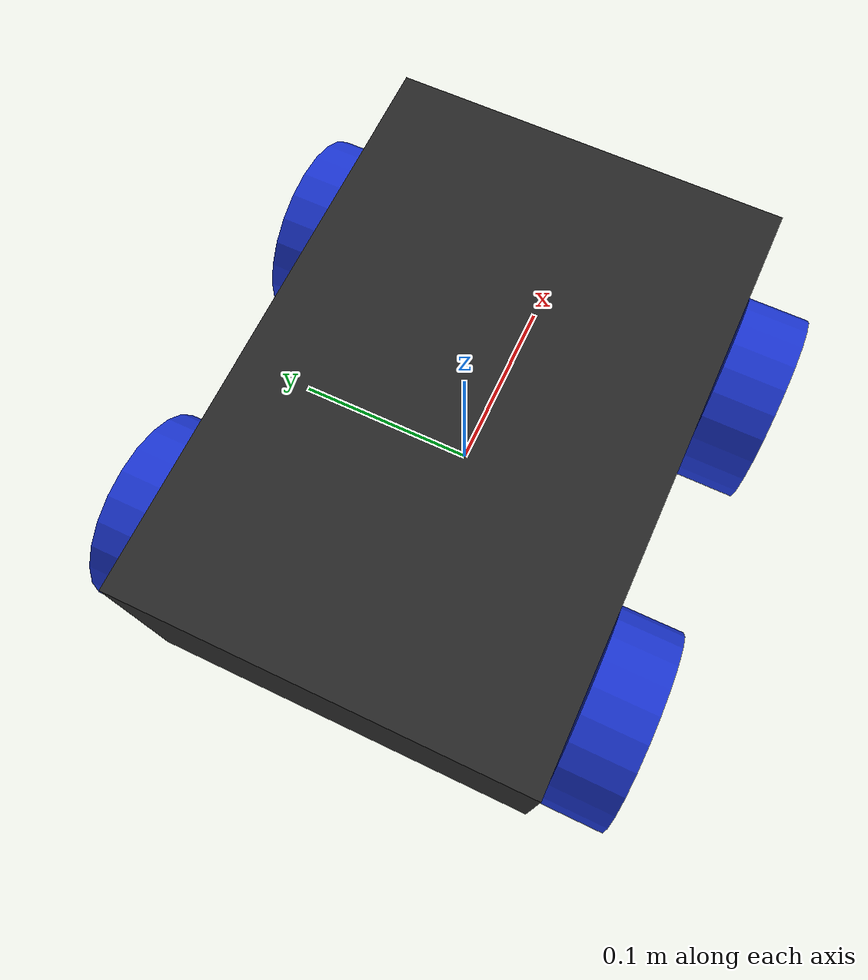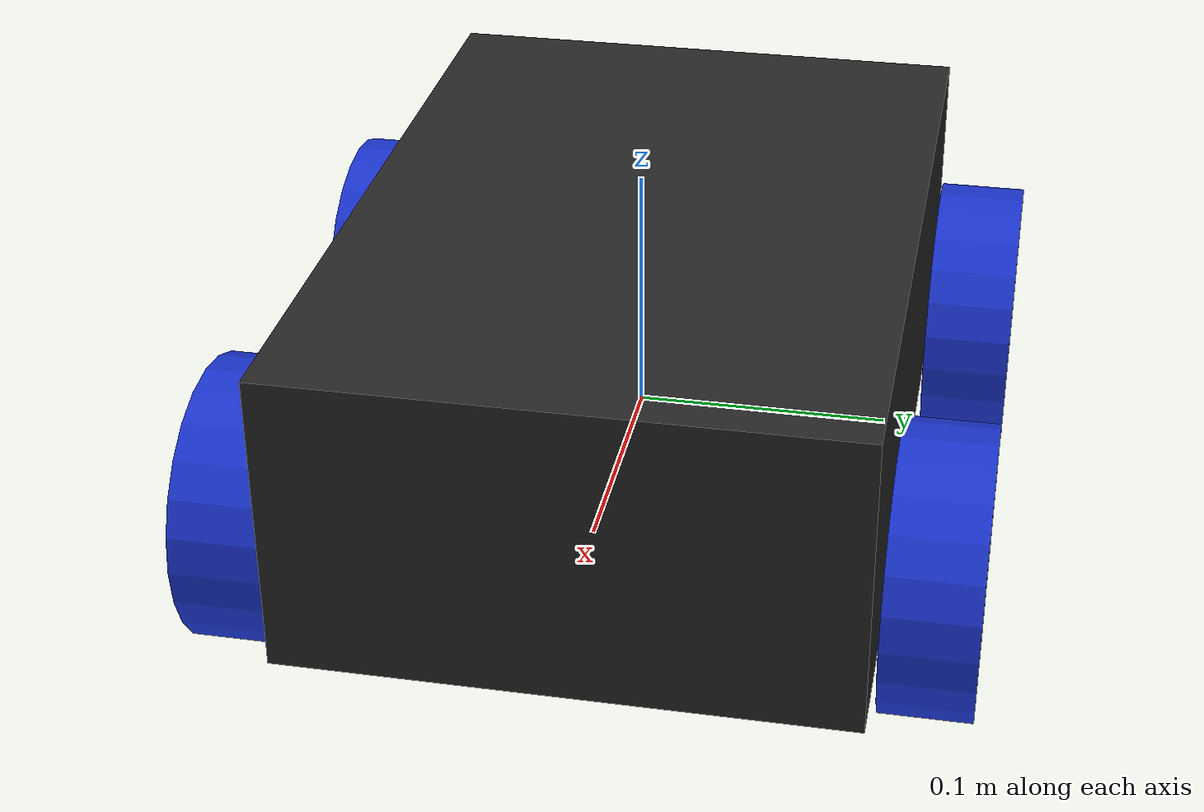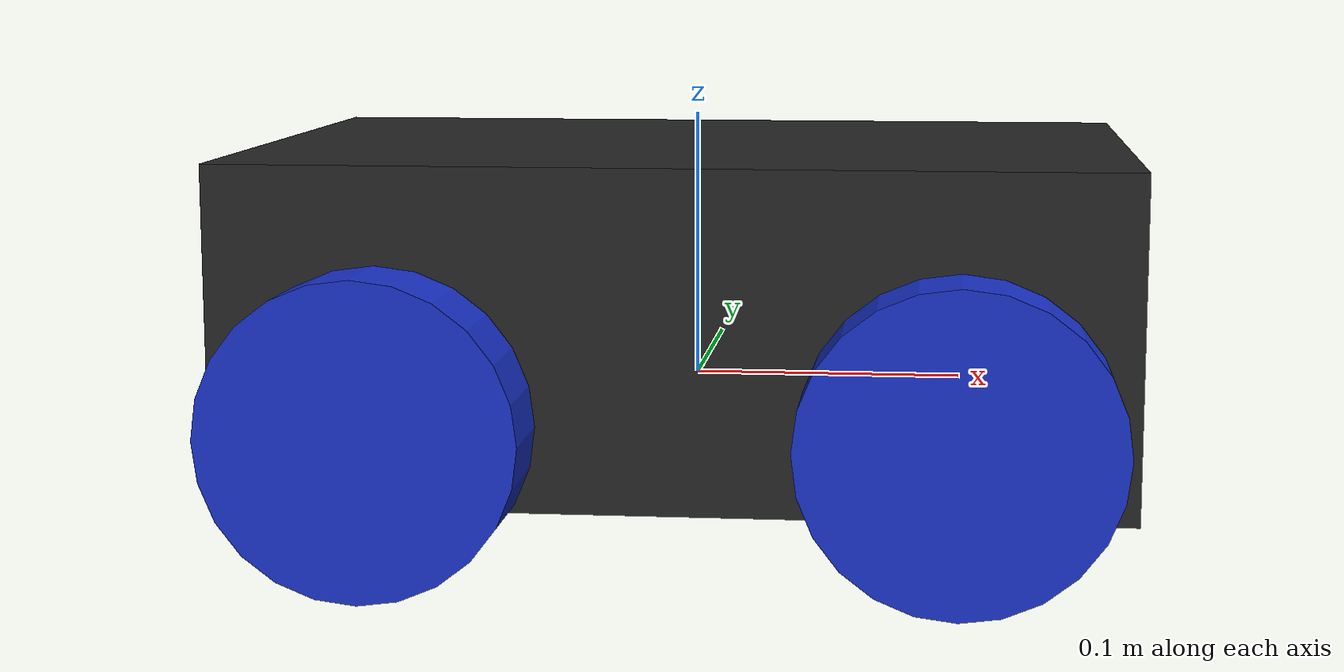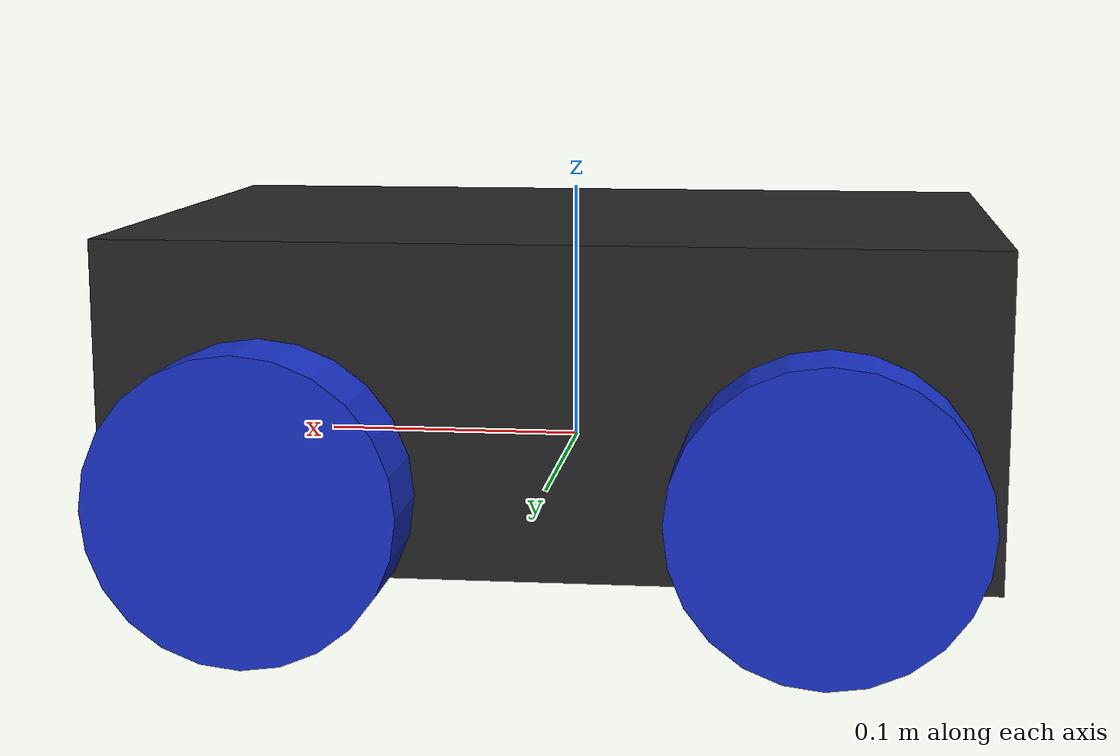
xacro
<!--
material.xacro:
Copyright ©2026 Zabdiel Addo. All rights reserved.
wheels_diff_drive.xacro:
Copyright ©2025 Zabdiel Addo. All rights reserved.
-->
<?xml version="1.0"?>
<!--
File: blazerbot_core.xacro
Project: Blazerbot Description (CS353 Lab 3)
Author: Zabdiel Addo
Version: 1.0.2
Brief: Core robot model. base_footprint added for Nav2/AMCL/SLAM compatibility.
-->
<robot xmlns:xacro="http://www.ros.org/wiki/xacro">

    <xacro:property name="BLAZERBOT_PACKAGE_NAME" value="blazerbot_description" />

    <xacro:include filename="$(find ${BLAZERBOT_PACKAGE_NAME})/urdf/macros/material.xacro" />
    <xacro:include filename="$(find ${BLAZERBOT_PACKAGE_NAME})/urdf/macros/inertial.xacro" />
    <xacro:include filename="$(find ${BLAZERBOT_PACKAGE_NAME})/urdf/macros/wheels_diff_drive.xacro" />

    <!-- Specs -->
    <xacro:property name="chassis_length" value="0.322" />
    <xacro:property name="chassis_width" value="0.220" />
    <xacro:property name="chassis_height" value="0.12" />
    <xacro:property name="chassis_mass" value="4.8" />

    <xacro:property name="ground_clearance" value="0.024" />
    <xacro:property name="wheelbase" value="0.200" />
    <xacro:property name="track_width" value="0.175" />

    <xacro:property name="wheel_radius" value="0.055" />
    <xacro:property name="wheel_width" value="0.035" />
    <xacro:property name="wheel_mass" value="0.30" />

    <!-- base_footprint: ground-plane projection, required by Nav2/AMCL/SLAM -->
    <link name="base_footprint" />

    <joint name="base_footprint_joint" type="fixed">
        <parent link="base_link" />
        <child link="base_footprint" />
        <origin xyz="0 0 ${wheel_radius}" rpy="0 0 0" />
    </joint>

    <!-- base_link at wheel center plane -->
    <link name="base_link" />

    <xacro:property name="chassis_z_from_base"
        value="${ground_clearance + chassis_height/2 - wheel_radius}" />

    <joint name="chassis_joint" type="fixed">
        <parent link="base_link" />
        <child link="chassis" />
        <origin xyz="0 0 ${chassis_z_from_base}" rpy="0 0 0" />
    </joint>

    <link name="chassis">
        <visual name="chassis_visual">
            <origin xyz="0 0 0" rpy="0 0 0" />
            <geometry>
                <box size="${chassis_length} ${chassis_width} ${chassis_height}" />
            </geometry>
            <material name="chassis_dark" />
        </visual>
        <collision name="chassis_collision">
            <origin xyz="0 0 0" rpy="0 0 0" />
            <geometry>
                <box size="${chassis_length} ${chassis_width} ${chassis_height}" />
            </geometry>
        </collision>
        <xacro:box_inertial prefix="chassis"
            mass="${chassis_mass}"
            x="${chassis_length}" y="${chassis_width}" z="${chassis_height}">
            <origin xyz="0 0 0" rpy="0 0 0" />
        </xacro:box_inertial>
    </link>

    <gazebo reference="chassis">
        <material>Gazebo/Black</material>
    </gazebo>

    <xacro:diff_drive_wheels
        parent_link="base_link"
        wheel_radius="${wheel_radius}"
        wheel_width="${wheel_width}"
        wheel_mass="${wheel_mass}"
        wheelbase="${wheelbase}"
        track_width="${track_width}" />

</robot>

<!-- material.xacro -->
<robot xmlns:xacro="http://www.ros.org/wiki/xacro">

    <!-- Matte dark chassis -->
    <material name="chassis_dark">
        <color rgba="0.15 0.15 0.15 1" />
    </material>

    <!-- Metallic silver (wheel hubs, bolts) -->
    <material name="metal_silver">
        <color rgba="0.7 0.7 0.7 1" />
    </material>

    <!-- Rubber black (tires) -->
    <material name="rubber_black">
        <color rgba="0.05 0.05 0.05 1" />
    </material>

    <!-- LIMO blue accent -->
    <material name="limo_blue">
        <color rgba="0.1 0.2 0.8 1" />
    </material>

    <!-- Sensor housing (LiDAR top cap) -->
    <material name="sensor_black">
        <color rgba="0.1 0.1 0.1 1" />
    </material>

    <!-- Transparent / debug -->
    <material name="transparent">
        <color rgba="0 0 0 0" />
    </material>

</robot>

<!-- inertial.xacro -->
<robot xmlns:xacro="http://www.ros.org/wiki/xacro">

    <xacro:macro name="sphere_inertial" params="prefix mass radius *origin">
        <inertial name="${prefix}_inertial">
            <xacro:insert_block name="origin" />
            <mass value="${mass}" />
            <inertia ixx="${(2/5) * mass * (radius*radius)}" ixy="0.0" ixz="0.0"
                iyy="${(2/5) * mass * (radius*radius)}" iyz="0.0"
                izz="${(2/5) * mass * (radius*radius)}" />
        </inertial>
    </xacro:macro>

    <xacro:macro name="cylinder_inertial" params="prefix mass radius length *origin">
        <inertial name="${prefix}_inertial">
            <xacro:insert_block name="origin" />
            <mass value="${mass}" />
            <inertia ixx="${(1/12) * mass * (3*radius*radius + length*length)}" ixy="0.0" ixz="0.0"
                iyy="${(1/12) * mass * (3*radius*radius + length*length)}" iyz="0.0"
                izz="${(1/2) * mass * (radius*radius)}" />
        </inertial>
    </xacro:macro>

    <xacro:macro name="box_inertial" params="prefix mass x y z *origin">
        <inertial name="${prefix}_inertial">
            <xacro:insert_block name="origin" />
            <mass value="${mass}" />
            <inertia ixx="${(1/12) * mass * (y*y + z*z)}" ixy="0.0" ixz="0.0"
                iyy="${(1/12) * mass * (x*x + z*z)}" iyz="0.0" izz="${(1/12) * mass *(x*x + y*y)}" />
        </inertial>
    </xacro:macro>
</robot>

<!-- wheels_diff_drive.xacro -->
<robot xmlns:xacro="http://www.ros.org/wiki/xacro">

    <xacro:property name="BLAZERBOT_PACKAGE_NAME" value="blazerbot_description" />
    <xacro:include filename="$(find ${BLAZERBOT_PACKAGE_NAME})/urdf/macros/inertial.xacro" />

    <xacro:macro name="wheel_link" params="name radius width mass material_name">
        <link name="${name}">
            <visual>
                <origin xyz="0 0 0" rpy="1.5708 0 0" />
                <geometry>
                    <cylinder radius="${radius}" length="${width}" />
                </geometry>
                <material name="${material_name}" />
            </visual>
            <collision>
                <origin xyz="0 0 0" rpy="1.5708 0 0" />
                <geometry>
                    <cylinder radius="${radius}" length="${width}" />
                </geometry>
            </collision>
            <xacro:cylinder_inertial prefix="${name}" mass="${mass}" radius="${radius}"
                length="${width}">
                <origin xyz="0 0 0" rpy="0 0 0" />
            </xacro:cylinder_inertial>
        </link>

        <gazebo reference="${name}">
            <material>Gazebo/Black</material>
            <mu1>1.0</mu1>
            <mu2>1.0</mu2>
            <kp>1000000.0</kp>
            <kd>1.0</kd>
            <minDepth>0.001</minDepth>
        </gazebo>
    </xacro:macro>

    <xacro:macro name="diff_drive_wheels"
        params="parent_link wheel_radius wheel_width wheel_mass wheelbase track_width">

        <xacro:property name="wheel_clearance" value="0.025" />
        <xacro:property name="wheel_y" value="${track_width/2 + wheel_width/2 + wheel_clearance}" />

        <!-- Front Left -->
        <xacro:wheel_link
            name="front_left_wheel_link"
            radius="${wheel_radius}"
            width="${wheel_width}"
            mass="${wheel_mass}"
            material_name="limo_blue" />
        <joint name="front_left_wheel_joint" type="continuous">
            <parent link="${parent_link}" />
            <child link="front_left_wheel_link" />
            <origin xyz="${wheelbase/2} ${wheel_y} 0" rpy="0 0 0" />
            <axis xyz="0 1 0" />
        </joint>

        <!-- Front Right -->
        <xacro:wheel_link
            name="front_right_wheel_link"
            radius="${wheel_radius}"
            width="${wheel_width}"
            mass="${wheel_mass}"
            material_name="limo_blue" />
        <joint name="front_right_wheel_joint" type="continuous">
            <parent link="${parent_link}" />
            <child link="front_right_wheel_link" />
            <origin xyz="${wheelbase/2} -${wheel_y} 0" rpy="0 0 0" />
            <axis xyz="0 1 0" />
        </joint>

        <!-- Rear Left -->
        <xacro:wheel_link
            name="rear_left_wheel_link"
            radius="${wheel_radius}"
            width="${wheel_width}"
            mass="${wheel_mass}"
            material_name="limo_blue" />
        <joint name="rear_left_wheel_joint" type="continuous">
            <parent link="${parent_link}" />
            <child link="rear_left_wheel_link" />
            <origin xyz="-${wheelbase/2} ${wheel_y} 0" rpy="0 0 0" />
            <axis xyz="0 1 0" />
        </joint>

        <!-- Rear Right -->
        <xacro:wheel_link
            name="rear_right_wheel_link"
            radius="${wheel_radius}"
            width="${wheel_width}"
            mass="${wheel_mass}"
            material_name="limo_blue" /> <!--Using blue for the wheels-->
        <joint name="rear_right_wheel_joint" type="continuous">
            <parent link="${parent_link}" />
            <child link="rear_right_wheel_link" />
            <origin xyz="-${wheelbase/2} -${wheel_y} 0" rpy="0 0 0" />
            <axis xyz="0 1 0" />
        </joint>

    </xacro:macro>

</robot>
